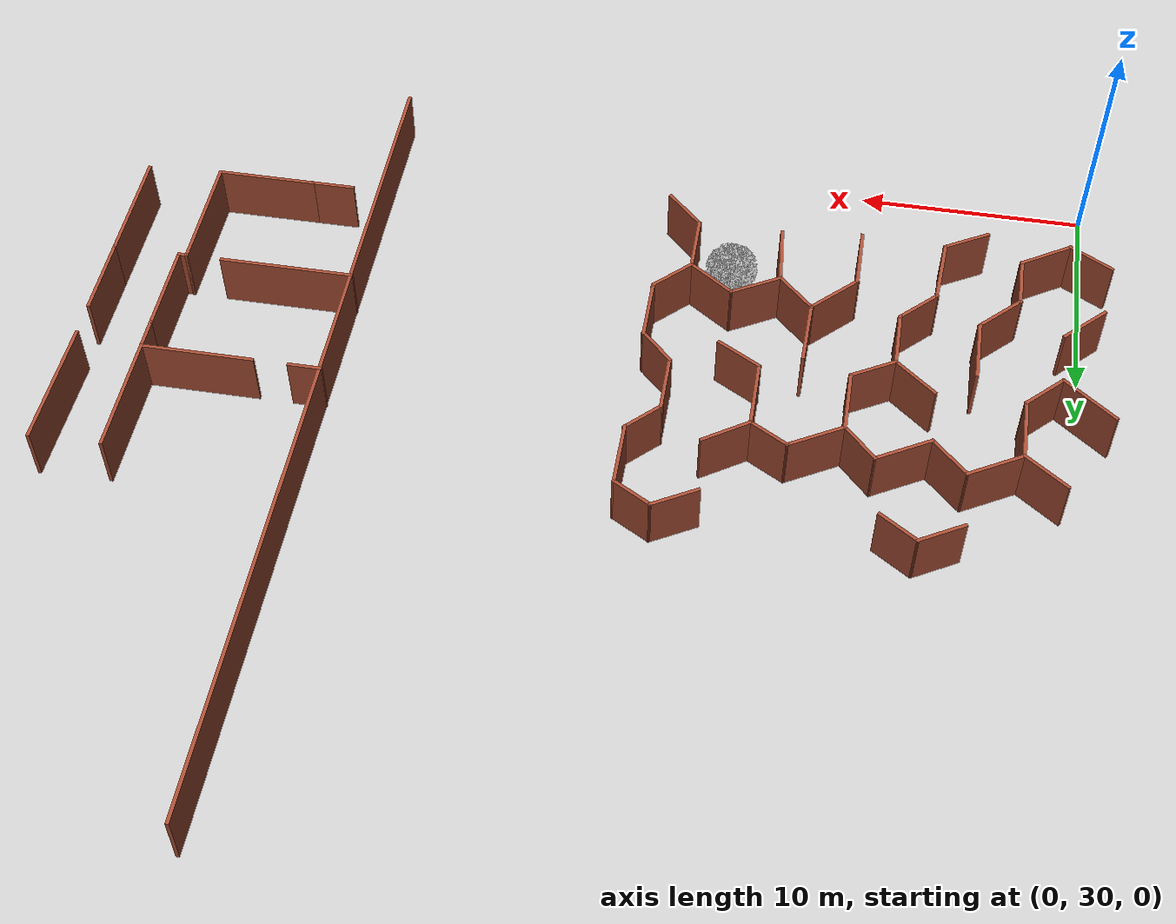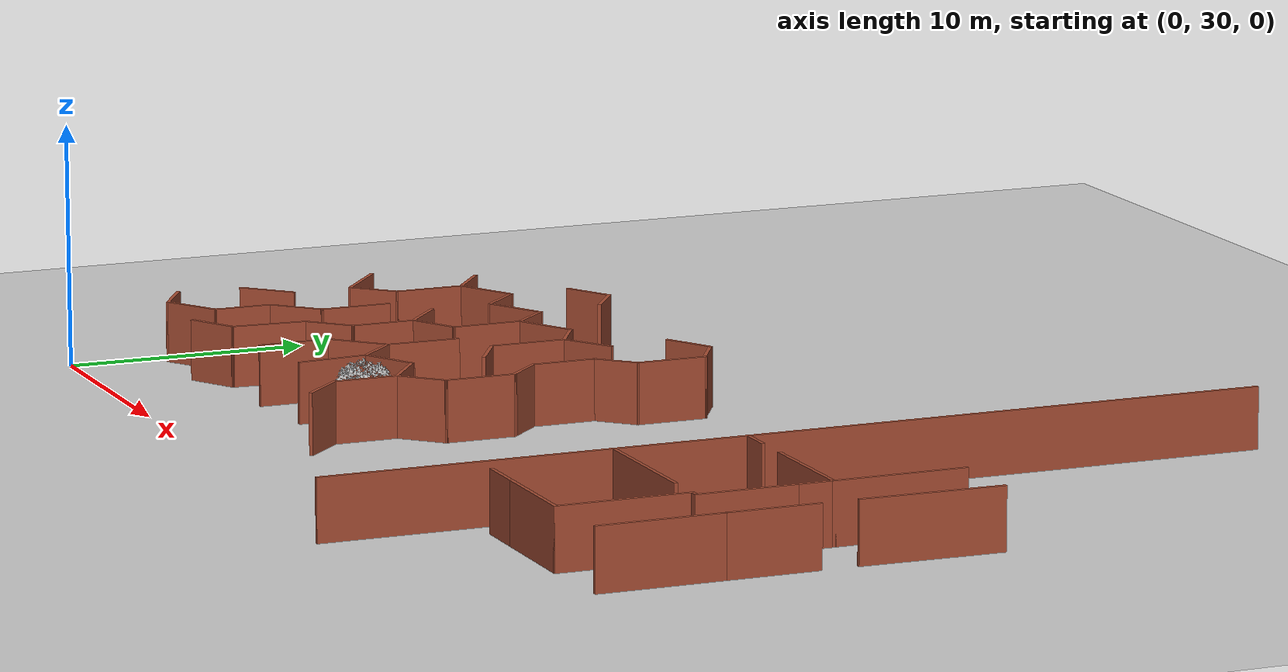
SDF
<sdf version="1.6">
 <world name="default">
  <model name="maze_rect_3">
   <pose>4e-06 -9.9e-05 0 0 -0 1.57001</pose>
   <link name="Wall_134">
    <collision name="Wall_134_Collision">
     <geometry><box><size>2.25 0.15 2.5</size></box></geometry>
     <pose>0 0 1.25 0 -0 0</pose>
    </collision>
    <visual name="Wall_134_Visual">
     <pose>0 0 1.25 0 -0 0</pose>
     <geometry><box><size>2.25 0.15 2.5</size></box></geometry>
     <material>
      <script><uri>file://media/materials/scripts/gazebo.material</uri><name>Gazebo/Bricks</name></script>
      <ambient>1 1 1 1</ambient>
     </material>
     <meta><layer>0</layer></meta>
    </visual>
    <pose>50.6067 -5.48083 0 0 -0 -1.0472</pose>
   </link>
   <link name="Wall_135">
    <collision name="Wall_135_Collision">
     <geometry><box><size>2.03846 0.15 2.5</size></box></geometry>
     <pose>0 0 1.25 0 -0 0</pose>
    </collision>
    <visual name="Wall_135_Visual">
     <pose>0 0 1.25 0 -0 0</pose>
     <geometry><box><size>2.03846 0.15 2.5</size></box></geometry>
     <material>
      <script><uri>file://media/materials/scripts/gazebo.material</uri><name>Gazebo/Bricks</name></script>
      <ambient>1 1 1 1</ambient>
     </material>
     <meta><layer>0</layer></meta>
    </visual>
    <pose>50.6067 -7.17498 0 0 -0 -2.16037</pose>
   </link>
   <link name="Wall_142">
    <collision name="Wall_142_Collision">
     <geometry><box><size>2.25 0.15 2.5</size></box></geometry>
     <pose>0 0 1.25 0 -0 0</pose>
    </collision>
    <visual name="Wall_142_Visual">
     <pose>0 0 1.25 0 -0 0</pose>
     <geometry><box><size>2.25 0.15 2.5</size></box></geometry>
     <material>
      <script><uri>file://media/materials/scripts/gazebo.material</uri><name>Gazebo/Bricks</name></script>
      <ambient>1 1 1 1</ambient>
     </material>
     <meta><layer>0</layer></meta>
    </visual>
    <pose>50.5837 -16.0931 0 0 -0 -1.0472</pose>
   </link>
   <link name="Wall_143">
    <collision name="Wall_143_Collision">
     <geometry><box><size>2 0.15 2.5</size></box></geometry>
     <pose>0 0 1.25 0 -0 0</pose>
    </collision>
    <visual name="Wall_143_Visual">
     <pose>0 0 1.25 0 -0 0</pose>
     <geometry><box><size>2 0.15 2.5</size></box></geometry>
     <material>
      <script><uri>file://media/materials/scripts/gazebo.material</uri><name>Gazebo/Bricks</name></script>
      <ambient>1 1 1 1</ambient>
     </material>
     <meta><layer>0</layer></meta>
    </visual>
    <pose>50.6462 -17.8035 0 0 -0 -2.0944</pose>
   </link>
   <link name="Wall_144">
    <collision name="Wall_144_Collision">
     <geometry><box><size>3 0.15 2.5</size></box></geometry>
     <pose>0 0 1.25 0 -0 0</pose>
    </collision>
    <visual name="Wall_144_Visual">
     <pose>0 0 1.25 0 -0 0</pose>
     <geometry><box><size>3 0.15 2.5</size></box></geometry>
     <material>
      <script><uri>file://media/materials/scripts/gazebo.material</uri><name>Gazebo/Bricks</name></script>
      <ambient>1 1 1 1</ambient>
     </material>
     <meta><layer>0</layer></meta>
    </visual>
    <pose>48.7587 -18.6045 0 0 -0 3.14159</pose>
   </link>
   <link name="Wall_145">
    <collision name="Wall_145_Collision">
     <geometry><box><size>2 0.15 2.5</size></box></geometry>
     <pose>0 0 1.25 0 -0 0</pose>
    </collision>
    <visual name="Wall_145_Visual">
     <pose>0 0 1.25 0 -0 0</pose>
     <geometry><box><size>2 0.15 2.5</size></box></geometry>
     <material>
      <script><uri>file://media/materials/scripts/gazebo.material</uri><name>Gazebo/Bricks</name></script>
      <ambient>1 1 1 1</ambient>
     </material>
     <meta><layer>0</layer></meta>
    </visual>
    <pose>46.6796 -17.9505 0 0 -0 2.35619</pose>
   </link>
   <link name="Wall_146">
    <collision name="Wall_146_Collision">
     <geometry><box><size>2.75 0.15 2.5</size></box></geometry>
     <pose>0 0 1.25 0 -0 0</pose>
    </collision>
    <visual name="Wall_146_Visual">
     <pose>0 0 1.25 0 -0 0</pose>
     <geometry><box><size>2.75 0.15 2.5</size></box></geometry>
     <material>
      <script><uri>file://media/materials/scripts/gazebo.material</uri><name>Gazebo/Bricks</name></script>
      <ambient>1 1 1 1</ambient>
     </material>
     <meta><layer>0</layer></meta>
    </visual>
    <pose>44.7255 -17.2964 0 0 -0 3.14159</pose>
   </link>
   <link name="Wall_147">
    <collision name="Wall_147_Collision">
     <geometry><box><size>2 0.15 2.5</size></box></geometry>
     <pose>0 0 1.25 0 -0 0</pose>
    </collision>
    <visual name="Wall_147_Visual">
     <pose>0 0 1.25 0 -0 0</pose>
     <geometry><box><size>2 0.15 2.5</size></box></geometry>
     <material>
      <script><uri>file://media/materials/scripts/gazebo.material</uri><name>Gazebo/Bricks</name></script>
      <ambient>1 1 1 1</ambient>
     </material>
     <meta><layer>0</layer></meta>
    </visual>
    <pose>42.7714 -17.9505 0 0 -0 -2.35619</pose>
   </link>
   <link name="Wall_148">
    <collision name="Wall_148_Collision">
     <geometry><box><size>3 0.15 2.5</size></box></geometry>
     <pose>0 0 1.25 0 -0 0</pose>
    </collision>
    <visual name="Wall_148_Visual">
     <pose>0 0 1.25 0 -0 0</pose>
     <geometry><box><size>3 0.15 2.5</size></box></geometry>
     <material>
      <script><uri>file://media/materials/scripts/gazebo.material</uri><name>Gazebo/Bricks</name></script>
      <ambient>1 1 1 1</ambient>
     </material>
     <meta><layer>0</layer></meta>
    </visual>
    <pose>40.6924 -18.6045 0 0 -0 3.14159</pose>
   </link>
   <link name="Wall_149">
    <collision name="Wall_149_Collision">
     <geometry><box><size>2.25 0.15 2.5</size></box></geometry>
     <pose>0 0 1.25 0 -0 0</pose>
    </collision>
    <visual name="Wall_149_Visual">
     <pose>0 0 1.25 0 -0 0</pose>
     <geometry><box><size>2.25 0.15 2.5</size></box></geometry>
     <material>
      <script><uri>file://media/materials/scripts/gazebo.material</uri><name>Gazebo/Bricks</name></script>
      <ambient>1 1 1 1</ambient>
     </material>
     <meta><layer>0</layer></meta>
    </visual>
    <pose>38.5249 -17.8621 0 0 -0 2.35619</pose>
   </link>
   <link name="Wall_150">
    <collision name="Wall_150_Collision">
     <geometry><box><size>2.75 0.15 2.5</size></box></geometry>
     <pose>0 0 1.25 0 -0 0</pose>
    </collision>
    <visual name="Wall_150_Visual">
     <pose>0 0 1.25 0 -0 0</pose>
     <geometry><box><size>2.75 0.15 2.5</size></box></geometry>
     <material>
      <script><uri>file://media/materials/scripts/gazebo.material</uri><name>Gazebo/Bricks</name></script>
      <ambient>1 1 1 1</ambient>
     </material>
     <meta><layer>0</layer></meta>
    </visual>
    <pose>36.4824 -17.1196 0 0 -0 3.14159</pose>
   </link>
   <link name="Wall_151">
    <collision name="Wall_151_Collision">
     <geometry><box><size>2.25 0.15 2.5</size></box></geometry>
     <pose>0 0 1.25 0 -0 0</pose>
    </collision>
    <visual name="Wall_151_Visual">
     <pose>0 0 1.25 0 -0 0</pose>
     <geometry><box><size>2.25 0.15 2.5</size></box></geometry>
     <material>
      <script><uri>file://media/materials/scripts/gazebo.material</uri><name>Gazebo/Bricks</name></script>
      <ambient>1 1 1 1</ambient>
     </material>
     <meta><layer>0</layer></meta>
    </visual>
    <pose>34.44 -17.8621 0 0 -0 -2.35619</pose>
   </link>
   <link name="Wall_215">
    <collision name="Wall_215_Collision">
     <geometry><box><size>3 0.15 2.5</size></box></geometry>
     <pose>0 0 1.25 0 -0 0</pose>
    </collision>
    <visual name="Wall_215_Visual">
     <pose>0 0 1.25 0 -0 0</pose>
     <geometry><box><size>3 0.15 2.5</size></box></geometry>
     <material>
      <script><uri>file://media/materials/scripts/gazebo.material</uri><name>Gazebo/Bricks</name></script>
      <ambient>1 1 1 1</ambient>
     </material>
     <meta><layer>0</layer></meta>
    </visual>
    <pose>36.1781 -9.85453 0 0 -0 0</pose>
   </link>
   <link name="Wall_216">
    <collision name="Wall_216_Collision">
     <geometry><box><size>2.75 0.15 2.5</size></box></geometry>
     <pose>0 0 1.25 0 -0 0</pose>
    </collision>
    <visual name="Wall_216_Visual">
     <pose>0 0 1.25 0 -0 0</pose>
     <geometry><box><size>2.75 0.15 2.5</size></box></geometry>
     <material>
      <script><uri>file://media/materials/scripts/gazebo.material</uri><name>Gazebo/Bricks</name></script>
      <ambient>1 1 1 1</ambient>
     </material>
     <meta><layer>0</layer></meta>
    </visual>
    <pose>38.5224 -10.7738 0 0 -0 -0.785398</pose>
   </link>
   <link name="Wall_217">
    <collision name="Wall_217_Collision">
     <geometry><box><size>2.25 0.15 2.5</size></box></geometry>
     <pose>0 0 1.25 0 -0 0</pose>
    </collision>
    <visual name="Wall_217_Visual">
     <pose>0 0 1.25 0 -0 0</pose>
     <geometry><box><size>2.25 0.15 2.5</size></box></geometry>
     <material>
      <script><uri>file://media/materials/scripts/gazebo.material</uri><name>Gazebo/Bricks</name></script>
      <ambient>1 1 1 1</ambient>
     </material>
     <meta><layer>0</layer></meta>
    </visual>
    <pose>38.6992 -12.4355 0 0 -0 -2.35619</pose>
   </link>
   <link name="Wall_218">
    <collision name="Wall_218_Collision">
     <geometry><box><size>2.5 0.15 2.5</size></box></geometry>
     <pose>0 0 1.25 0 -0 0</pose>
    </collision>
    <visual name="Wall_218_Visual">
     <pose>0 0 1.25 0 -0 0</pose>
     <geometry><box><size>2.5 0.15 2.5</size></box></geometry>
     <material>
      <script><uri>file://media/materials/scripts/gazebo.material</uri><name>Gazebo/Bricks</name></script>
      <ambient>1 1 1 1</ambient>
     </material>
     <meta><layer>0</layer></meta>
    </visual>
    <pose>38.5442 -14.1955 0 0 -0 -1.0472</pose>
   </link>
   <link name="Wall_220">
    <collision name="Wall_220_Collision">
     <geometry><box><size>2.48566 0.15 2.5</size></box></geometry>
     <pose>0 0 1.25 0 -0 0</pose>
    </collision>
    <visual name="Wall_220_Visual">
     <pose>0 0 1.25 0 -0 0</pose>
     <geometry><box><size>2.48566 0.15 2.5</size></box></geometry>
     <material>
      <script><uri>file://media/materials/scripts/gazebo.material</uri><name>Gazebo/Bricks</name></script>
      <ambient>1 1 1 1</ambient>
     </material>
     <meta><layer>0</layer></meta>
    </visual>
    <pose>38.4571 -16.1663 0 0 -0 0.954913</pose>
   </link>
   <link name="Wall_222">
    <collision name="Wall_222_Collision">
     <geometry><box><size>2.99185 0.15 2.5</size></box></geometry>
     <pose>0 0 1.25 0 -0 0</pose>
    </collision>
    <visual name="Wall_222_Visual">
     <pose>0 0 1.25 0 -0 0</pose>
     <geometry><box><size>2.99185 0.15 2.5</size></box></geometry>
     <material>
      <script><uri>file://media/materials/scripts/gazebo.material</uri><name>Gazebo/Bricks</name></script>
      <ambient>1 1 1 1</ambient>
     </material>
     <meta><layer>0</layer></meta>
    </visual>
    <pose>36.5401 -13.2884 0 0 -0 0.077809</pose>
   </link>
   <link name="Wall_224">
    <collision name="Wall_224_Collision">
     <geometry><box><size>3.07986 0.15 2.5</size></box></geometry>
     <pose>0 0 1.25 0 -0 0</pose>
    </collision>
    <visual name="Wall_224_Visual">
     <pose>0 0 1.25 0 -0 0</pose>
     <geometry><box><size>3.07986 0.15 2.5</size></box></geometry>
     <material>
      <script><uri>file://media/materials/scripts/gazebo.material</uri><name>Gazebo/Bricks</name></script>
      <ambient>1 1 1 1</ambient>
     </material>
     <meta><layer>0</layer></meta>
    </visual>
    <pose>40.9062 -11.726 0 0 -0 3.11909</pose>
   </link>
   <link name="Wall_234">
    <collision name="Wall_234_Collision">
     <geometry><box><size>2.25 0.15 2.5</size></box></geometry>
     <pose>0 0 1.25 0 -0 0</pose>
    </collision>
    <visual name="Wall_234_Visual">
     <pose>0 0 1.25 0 -0 0</pose>
     <geometry><box><size>2.25 0.15 2.5</size></box></geometry>
     <material>
      <script><uri>file://media/materials/scripts/gazebo.material</uri><name>Gazebo/Bricks</name></script>
      <ambient>1 1 1 1</ambient>
     </material>
     <meta><layer>0</layer></meta>
    </visual>
    <pose>34.3259 -5.26225 0 0 -0 -1.0472</pose>
   </link>
   <link name="Wall_238">
    <collision name="Wall_238_Collision">
     <geometry><box><size>2.25 0.15 2.5</size></box></geometry>
     <pose>0 0 1.25 0 -0 0</pose>
    </collision>
    <visual name="Wall_238_Visual">
     <pose>0 0 1.25 0 -0 0</pose>
     <geometry><box><size>2.25 0.15 2.5</size></box></geometry>
     <material>
      <script><uri>file://media/materials/scripts/gazebo.material</uri><name>Gazebo/Bricks</name></script>
      <ambient>1 1 1 1</ambient>
     </material>
     <meta><layer>0</layer></meta>
    </visual>
    <pose>42.6312 -14.4468 0 0 -0 1.0472</pose>
   </link>
   <link name="Wall_239">
    <collision name="Wall_239_Collision">
     <geometry><box><size>3.25 0.15 2.5</size></box></geometry>
     <pose>0 0 1.25 0 -0 0</pose>
    </collision>
    <visual name="Wall_239_Visual">
     <pose>0 0 1.25 0 -0 0</pose>
     <geometry><box><size>3.25 0.15 2.5</size></box></geometry>
     <material>
      <script><uri>file://media/materials/scripts/gazebo.material</uri><name>Gazebo/Bricks</name></script>
      <ambient>1 1 1 1</ambient>
     </material>
     <meta><layer>0</layer></meta>
    </visual>
    <pose>44.7062 -13.5375 0 0 -0 0</pose>
   </link>
   <link name="Wall_240">
    <collision name="Wall_240_Collision">
     <geometry><box><size>2 0.15 2.5</size></box></geometry>
     <pose>0 0 1.25 0 -0 0</pose>
    </collision>
    <visual name="Wall_240_Visual">
     <pose>0 0 1.25 0 -0 0</pose>
     <geometry><box><size>2 0.15 2.5</size></box></geometry>
     <material>
      <script><uri>file://media/materials/scripts/gazebo.material</uri><name>Gazebo/Bricks</name></script>
      <ambient>1 1 1 1</ambient>
     </material>
     <meta><layer>0</layer></meta>
    </visual>
    <pose>46.7187 -12.7364 0 0 -0 1.0472</pose>
   </link>
   <link name="Wall_241">
    <collision name="Wall_241_Collision">
     <geometry><box><size>2.75 0.15 2.5</size></box></geometry>
     <pose>0 0 1.25 0 -0 0</pose>
    </collision>
    <visual name="Wall_241_Visual">
     <pose>0 0 1.25 0 -0 0</pose>
     <geometry><box><size>2.75 0.15 2.5</size></box></geometry>
     <material>
      <script><uri>file://media/materials/scripts/gazebo.material</uri><name>Gazebo/Bricks</name></script>
      <ambient>1 1 1 1</ambient>
     </material>
     <meta><layer>0</layer></meta>
    </visual>
    <pose>46.5312 -10.8095 0 0 -0 2.0944</pose>
   </link>
   <link name="Wall_242">
    <collision name="Wall_242_Collision">
     <geometry><box><size>3 0.15 2.5</size></box></geometry>
     <pose>0 0 1.25 0 -0 0</pose>
    </collision>
    <visual name="Wall_242_Visual">
     <pose>0 0 1.25 0 -0 0</pose>
     <geometry><box><size>3 0.15 2.5</size></box></geometry>
     <material>
      <script><uri>file://media/materials/scripts/gazebo.material</uri><name>Gazebo/Bricks</name></script>
      <ambient>1 1 1 1</ambient>
     </material>
     <meta><layer>0</layer></meta>
    </visual>
    <pose>44.4562 -9.68366 0 0 -0 3.14159</pose>
   </link>
   <link name="Wall_243">
    <collision name="Wall_243_Collision">
     <geometry><box><size>2.25 0.15 2.5</size></box></geometry>
     <pose>0 0 1.25 0 -0 0</pose>
    </collision>
    <visual name="Wall_243_Visual">
     <pose>0 0 1.25 0 -0 0</pose>
     <geometry><box><size>2.25 0.15 2.5</size></box></geometry>
     <material>
      <script><uri>file://media/materials/scripts/gazebo.material</uri><name>Gazebo/Bricks</name></script>
      <ambient>1 1 1 1</ambient>
     </material>
     <meta><layer>0</layer></meta>
    </visual>
    <pose>42.5062 -8.77434 0 0 -0 2.0944</pose>
   </link>
   <link name="Wall_244">
    <collision name="Wall_244_Collision">
     <geometry><box><size>2.75 0.15 2.5</size></box></geometry>
     <pose>0 0 1.25 0 -0 0</pose>
    </collision>
    <visual name="Wall_244_Visual">
     <pose>0 0 1.25 0 -0 0</pose>
     <geometry><box><size>2.75 0.15 2.5</size></box></geometry>
     <material>
      <script><uri>file://media/materials/scripts/gazebo.material</uri><name>Gazebo/Bricks</name></script>
      <ambient>1 1 1 1</ambient>
     </material>
     <meta><layer>0</layer></meta>
    </visual>
    <pose>40.6812 -7.86501 0 0 -0 3.14159</pose>
   </link>
   <link name="Wall_245">
    <collision name="Wall_245_Collision">
     <geometry><box><size>2.25 0.15 2.5</size></box></geometry>
     <pose>0 0 1.25 0 -0 0</pose>
    </collision>
    <visual name="Wall_245_Visual">
     <pose>0 0 1.25 0 -0 0</pose>
     <geometry><box><size>2.25 0.15 2.5</size></box></geometry>
     <material>
      <script><uri>file://media/materials/scripts/gazebo.material</uri><name>Gazebo/Bricks</name></script>
      <ambient>1 1 1 1</ambient>
     </material>
     <meta><layer>0</layer></meta>
    </visual>
    <pose>38.6388 -7.12255 0 0 -0 2.35619</pose>
   </link>
   <link name="Wall_246">
    <collision name="Wall_246_Collision">
     <geometry><box><size>3.2025 0.15 2.5</size></box></geometry>
     <pose>0 0 1.25 0 -0 0</pose>
    </collision>
    <visual name="Wall_246_Visual">
     <pose>0 0 1.25 0 -0 0</pose>
     <geometry><box><size>3.2025 0.15 2.5</size></box></geometry>
     <material>
      <script><uri>file://media/materials/scripts/gazebo.material</uri><name>Gazebo/Bricks</name></script>
      <ambient>1 1 1 1</ambient>
     </material>
     <meta><layer>0</layer></meta>
    </visual>
    <pose>36.3736 -6.27583 0 0 -0 3.07323</pose>
   </link>
   <link name="Wall_248">
    <collision name="Wall_248_Collision">
     <geometry><box><size>2.39827 0.15 2.5</size></box></geometry>
     <pose>0 0 1.25 0 -0 0</pose>
    </collision>
    <visual name="Wall_248_Visual">
     <pose>0 0 1.25 0 -0 0</pose>
     <geometry><box><size>2.39827 0.15 2.5</size></box></geometry>
     <material>
      <script><uri>file://media/materials/scripts/gazebo.material</uri><name>Gazebo/Bricks</name></script>
      <ambient>1 1 1 1</ambient>
     </material>
     <meta><layer>0</layer></meta>
    </visual>
    <pose>46.8791 -14.4733 0 0 -0 2.15809</pose>
   </link>
   <link name="Wall_250">
    <collision name="Wall_250_Collision">
     <geometry><box><size>2.94552 0.15 2.5</size></box></geometry>
     <pose>0 0 1.25 0 -0 0</pose>
    </collision>
    <visual name="Wall_250_Visual">
     <pose>0 0 1.25 0 -0 0</pose>
     <geometry><box><size>2.94552 0.15 2.5</size></box></geometry>
     <material>
      <script><uri>file://media/materials/scripts/gazebo.material</uri><name>Gazebo/Bricks</name></script>
      <ambient>1 1 1 1</ambient>
     </material>
     <meta><layer>0</layer></meta>
    </visual>
    <pose>42.72 0.211357 0 0 -0 -2.24031</pose>
   </link>
   <link name="Wall_251">
    <collision name="Wall_251_Collision">
     <geometry><box><size>2.25 0.15 2.5</size></box></geometry>
     <pose>0 0 1.25 0 -0 0</pose>
    </collision>
    <visual name="Wall_251_Visual">
     <pose>0 0 1.25 0 -0 0</pose>
     <geometry><box><size>2.25 0.15 2.5</size></box></geometry>
     <material>
      <script><uri>file://media/materials/scripts/gazebo.material</uri><name>Gazebo/Bricks</name></script>
      <ambient>1 1 1 1</ambient>
     </material>
     <meta><layer>0</layer></meta>
    </visual>
    <pose>42.595 -1.62712 0 0 -0 -0.785398</pose>
   </link>
   <link name="Wall_252">
    <collision name="Wall_252_Collision">
     <geometry><box><size>3 0.15 2.5</size></box></geometry>
     <pose>0 0 1.25 0 -0 0</pose>
    </collision>
    <visual name="Wall_252_Visual">
     <pose>0 0 1.25 0 -0 0</pose>
     <geometry><box><size>3 0.15 2.5</size></box></geometry>
     <material>
      <script><uri>file://media/materials/scripts/gazebo.material</uri><name>Gazebo/Bricks</name></script>
      <ambient>1 1 1 1</ambient>
     </material>
     <meta><layer>0</layer></meta>
    </visual>
    <pose>44.7624 -2.36958 0 0 -0 0</pose>
   </link>
   <link name="Wall_253">
    <collision name="Wall_253_Collision">
     <geometry><box><size>2.75 0.15 2.5</size></box></geometry>
     <pose>0 0 1.25 0 -0 0</pose>
    </collision>
    <visual name="Wall_253_Visual">
     <pose>0 0 1.25 0 -0 0</pose>
     <geometry><box><size>2.75 0.15 2.5</size></box></geometry>
     <material>
      <script><uri>file://media/materials/scripts/gazebo.material</uri><name>Gazebo/Bricks</name></script>
      <ambient>1 1 1 1</ambient>
     </material>
     <meta><layer>0</layer></meta>
    </visual>
    <pose>46.8374 -3.49542 0 0 -0 -1.0472</pose>
   </link>
   <link name="Wall_254">
    <collision name="Wall_254_Collision">
     <geometry><box><size>2.25 0.15 2.5</size></box></geometry>
     <pose>0 0 1.25 0 -0 0</pose>
    </collision>
    <visual name="Wall_254_Visual">
     <pose>0 0 1.25 0 -0 0</pose>
     <geometry><box><size>2.25 0.15 2.5</size></box></geometry>
     <material>
      <script><uri>file://media/materials/scripts/gazebo.material</uri><name>Gazebo/Bricks</name></script>
      <ambient>1 1 1 1</ambient>
     </material>
     <meta><layer>0</layer></meta>
    </visual>
    <pose>46.745 -5.36371 0 0 -0 -2.35619</pose>
   </link>
   <link name="Wall_255">
    <collision name="Wall_255_Collision">
     <geometry><box><size>2.75 0.15 2.5</size></box></geometry>
     <pose>0 0 1.25 0 -0 0</pose>
    </collision>
    <visual name="Wall_255_Visual">
     <pose>0 0 1.25 0 -0 0</pose>
     <geometry><box><size>2.75 0.15 2.5</size></box></geometry>
     <material>
      <script><uri>file://media/materials/scripts/gazebo.material</uri><name>Gazebo/Bricks</name></script>
      <ambient>1 1 1 1</ambient>
     </material>
     <meta><layer>0</layer></meta>
    </visual>
    <pose>46.6525 -7.23201 0 0 -0 -1.0472</pose>
   </link>
   <link name="Wall_256">
    <collision name="Wall_256_Collision">
     <geometry><box><size>2.09366 0.15 2.5</size></box></geometry>
     <pose>0 0 1.25 0 -0 0</pose>
    </collision>
    <visual name="Wall_256_Visual">
     <pose>0 0 1.25 0 -0 0</pose>
     <geometry><box><size>2.09366 0.15 2.5</size></box></geometry>
     <material>
      <script><uri>file://media/materials/scripts/gazebo.material</uri><name>Gazebo/Bricks</name></script>
      <ambient>1 1 1 1</ambient>
     </material>
     <meta><layer>0</layer></meta>
    </visual>
    <pose>46.5919 -9.02075 0 0 -0 -2.39093</pose>
   </link>
   <link name="Wall_269">
    <collision name="Wall_269_Collision">
     <geometry><box><size>2.25 0.15 2.5</size></box></geometry>
     <pose>0 0 1.25 0 -0 0</pose>
    </collision>
    <visual name="Wall_269_Visual">
     <pose>0 0 1.25 0 -0 0</pose>
     <geometry><box><size>2.25 0.15 2.5</size></box></geometry>
     <material>
      <script><uri>file://media/materials/scripts/gazebo.material</uri><name>Gazebo/Bricks</name></script>
      <ambient>1 1 1 1</ambient>
     </material>
     <meta><layer>0</layer></meta>
    </visual>
    <pose>34.5085 0.198006 0 0 -0 -2.0944</pose>
   </link>
   <link name="Wall_283">
    <collision name="Wall_283_Collision">
     <geometry><box><size>3 0.15 2.5</size></box></geometry>
     <pose>0 0 1.25 0 -0 0</pose>
    </collision>
    <visual name="Wall_283_Visual">
     <pose>0 0 1.25 0 -0 0</pose>
     <geometry><box><size>3 0.15 2.5</size></box></geometry>
     <material>
      <script><uri>file://media/materials/scripts/gazebo.material</uri><name>Gazebo/Bricks</name></script>
      <ambient>1 1 1 1</ambient>
     </material>
     <meta><layer>0</layer></meta>
    </visual>
    <pose>40.7341 -4.45873 0 0 -0 3.14159</pose>
   </link>
   <link name="Wall_284">
    <collision name="Wall_284_Collision">
     <geometry><box><size>2.5 0.15 2.5</size></box></geometry>
     <pose>0 0 1.25 0 -0 0</pose>
    </collision>
    <visual name="Wall_284_Visual">
     <pose>0 0 1.25 0 -0 0</pose>
     <geometry><box><size>2.5 0.15 2.5</size></box></geometry>
     <material>
      <script><uri>file://media/materials/scripts/gazebo.material</uri><name>Gazebo/Bricks</name></script>
      <ambient>1 1 1 1</ambient>
     </material>
     <meta><layer>0</layer></meta>
    </visual>
    <pose>38.4783 -3.62788 0 0 -0 2.35619</pose>
   </link>
   <link name="Wall_285">
    <collision name="Wall_285_Collision">
     <geometry><box><size>2.5 0.15 2.5</size></box></geometry>
     <pose>0 0 1.25 0 -0 0</pose>
    </collision>
    <visual name="Wall_285_Visual">
     <pose>0 0 1.25 0 -0 0</pose>
     <geometry><box><size>2.5 0.15 2.5</size></box></geometry>
     <material>
      <script><uri>file://media/materials/scripts/gazebo.material</uri><name>Gazebo/Bricks</name></script>
      <ambient>1 1 1 1</ambient>
     </material>
     <meta><layer>0</layer></meta>
    </visual>
    <pose>36.4724 -2.79703 0 0 -0 3.14159</pose>
   </link>
   <link name="Wall_286">
    <collision name="Wall_286_Collision">
     <geometry><box><size>2.61508 0.15 2.5</size></box></geometry>
     <pose>0 0 1.25 0 -0 0</pose>
    </collision>
    <visual name="Wall_286_Visual">
     <pose>0 0 1.25 0 -0 0</pose>
     <geometry><box><size>2.61508 0.15 2.5</size></box></geometry>
     <material>
      <script><uri>file://media/materials/scripts/gazebo.material</uri><name>Gazebo/Bricks</name></script>
      <ambient>1 1 1 1</ambient>
     </material>
     <meta><layer>0</layer></meta>
    </visual>
    <pose>34.6405 -1.75417 0 0 -0 2.13297</pose>
   </link>
   <link name="Wall_288">
    <collision name="Wall_288_Collision">
     <geometry><box><size>2.5 0.15 2.5</size></box></geometry>
     <pose>0 0 1.25 0 -0 0</pose>
    </collision>
    <visual name="Wall_288_Visual">
     <pose>0 0 1.25 0 -0 0</pose>
     <geometry><box><size>2.5 0.15 2.5</size></box></geometry>
     <material>
      <script><uri>file://media/materials/scripts/gazebo.material</uri><name>Gazebo/Bricks</name></script>
      <ambient>1 1 1 1</ambient>
     </material>
     <meta><layer>0</layer></meta>
    </visual>
    <pose>38.5246 -0.030677 0 0 -0 2.35619</pose>
   </link>
   <link name="Wall_295">
    <collision name="Wall_295_Collision">
     <geometry><box><size>2.35684 0.15 2.5</size></box></geometry>
     <pose>0 0 1.25 0 -0 0</pose>
    </collision>
    <visual name="Wall_295_Visual">
     <pose>0 0 1.25 0 -0 0</pose>
     <geometry><box><size>2.35684 0.15 2.5</size></box></geometry>
     <material>
      <script><uri>file://media/materials/scripts/gazebo.material</uri><name>Gazebo/Bricks</name></script>
      <ambient>1 1 1 1</ambient>
     </material>
     <meta><layer>0</layer></meta>
    </visual>
    <pose>46.8447 -1.48331 0 0 -0 -2.20893</pose>
   </link>
   <link name="Wall_297">
    <collision name="Wall_297_Collision">
     <geometry><box><size>2.39305 0.15 2.5</size></box></geometry>
     <pose>0 0 1.25 0 -0 0</pose>
    </collision>
    <visual name="Wall_297_Visual">
     <pose>0 0 1.25 0 -0 0</pose>
     <geometry><box><size>2.39305 0.15 2.5</size></box></geometry>
     <material>
      <script><uri>file://media/materials/scripts/gazebo.material</uri><name>Gazebo/Bricks</name></script>
      <ambient>1 1 1 1</ambient>
     </material>
     <meta><layer>0</layer></meta>
    </visual>
    <pose>42.705 -7.00827 0 0 -0 -2.27225</pose>
   </link>
   <static>1</static>
  </model>
  <model name="tree2_5">
   <link name="link_0">
    <inertial>
     <mass>1</mass>
     <inertia>
      <ixx>0.166667</ixx>
      <ixy>0</ixy>
      <ixz>0</ixz>
      <iyy>0.166667</iyy>
      <iyz>0</iyz>
      <izz>0.166667</izz>
     </inertia>
    </inertial>
    <pose>-0 -0 0 1.58863 -0.000294 0</pose>
    <visual name="visual">
     <geometry><mesh><uri>model://tree2/Tree.obj</uri><scale>1 1 1</scale></mesh></geometry>
    </visual>
    <collision name="collision">
     <geometry><mesh><uri>model://tree2/Tree.obj</uri><scale>1 1 1</scale></mesh></geometry>
     <surface>
      <friction>
       <ode><mu>1</mu><mu2>1</mu2><fdir1>0 0 0</fdir1><slip1>0</slip1><slip2>0</slip2></ode>
       <torsional>
        <coefficient>1</coefficient>
        <patch_radius>0</patch_radius>
        <surface_radius>0</surface_radius>
        <use_patch_radius>1</use_patch_radius>
        <ode><slip>0</slip></ode>
       </torsional>
      </friction>
      <bounce><restitution_coefficient>0</restitution_coefficient><threshold>1e+06</threshold></bounce>
      <contact>
       <collide_without_contact>0</collide_without_contact>
       <collide_without_contact_bitmask>1</collide_without_contact_bitmask>
       <collide_bitmask>1</collide_bitmask>
       <ode>
        <soft_cfm>0</soft_cfm>
        <soft_erp>0.2</soft_erp>
        <kp>1e+13</kp>
        <kd>1</kd>
        <max_vel>0.01</max_vel>
        <min_depth>0</min_depth>
       </ode>
       <bullet>
        <split_impulse>1</split_impulse>
        <split_impulse_penetration_threshold>-0.01</split_impulse_penetration_threshold>
        <soft_cfm>0</soft_cfm>
        <soft_erp>0.2</soft_erp>
        <kp>1e+13</kp>
        <kd>1</kd>
       </bullet>
      </contact>
     </surface>
    </collision>
   </link>
   <static>1</static>
   <pose>15.4402 37.0738 0 0 -0 0</pose>
  </model>
  <model name="map_palace_v2_model_1">
   <pose>0 60 0 0 -0 0</pose>
   <link name="Wall_275">
    <collision name="Wall_275_Collision">
     <geometry><box><size>5.25 0.15 2.5</size></box></geometry>
     <pose>0 0 1.25 0 -0 0</pose>
    </collision>
    <visual name="Wall_275_Visual">
     <pose>0 0 1.25 0 -0 0</pose>
     <geometry><box><size>5.25 0.15 2.5</size></box></geometry>
     <material>
      <script><uri>file://media/materials/scripts/gazebo.material</uri><name>Gazebo/Bricks</name></script>
      <ambient>1 1 1 1</ambient>
     </material>
     <meta><layer>0</layer></meta>
    </visual>
    <pose>42.5023 -21.6985 0 0 -0 1.5708</pose>
   </link>
   <link name="Wall_280">
    <collision name="Wall_280_Collision">
     <geometry><box><size>2 0.15 2.5</size></box></geometry>
     <pose>0 0 1.25 0 -0 0</pose>
    </collision>
    <visual name="Wall_280_Visual">
     <pose>0 0 1.25 0 -0 0</pose>
     <geometry><box><size>2 0.15 2.5</size></box></geometry>
     <material>
      <script><uri>file://media/materials/scripts/gazebo.material</uri><name>Gazebo/Bricks</name></script>
      <ambient>1 1 1 1</ambient>
     </material>
     <meta><layer>0</layer></meta>
    </visual>
    <pose>33.9319 -24.4851 0 0 -0 3.14159</pose>
   </link>
   <link name="Wall_283">
    <collision name="Wall_283_Collision">
     <geometry><box><size>4.5 0.15 2.5</size></box></geometry>
     <pose>0 0 1.25 0 -0 0</pose>
    </collision>
    <visual name="Wall_283_Visual">
     <pose>0 0 1.25 0 -0 0</pose>
     <geometry><box><size>4.5 0.15 2.5</size></box></geometry>
     <material>
      <script><uri>file://media/materials/scripts/gazebo.material</uri><name>Gazebo/Bricks</name></script>
      <ambient>1 1 1 1</ambient>
     </material>
     <meta><layer>0</layer></meta>
    </visual>
    <pose>37.0319 -24.4851 0 0 -0 0</pose>
   </link>
   <link name="Wall_284">
    <collision name="Wall_284_Collision">
     <geometry><box><size>5.5 0.15 2.5</size></box></geometry>
     <pose>0 0 1.25 0 -0 0</pose>
    </collision>
    <visual name="Wall_284_Visual">
     <pose>0 0 1.25 0 -0 0</pose>
     <geometry><box><size>5.5 0.15 2.5</size></box></geometry>
     <material>
      <script><uri>file://media/materials/scripts/gazebo.material</uri><name>Gazebo/Bricks</name></script>
      <ambient>1 1 1 1</ambient>
     </material>
     <meta><layer>0</layer></meta>
    </visual>
    <pose>39.2069 -21.8101 0 0 -0 1.5708</pose>
   </link>
   <link name="Wall_286">
    <collision name="Wall_286_Collision">
     <geometry><box><size>6 0.15 2.5</size></box></geometry>
     <pose>0 0 1.25 0 -0 0</pose>
    </collision>
    <visual name="Wall_286_Visual">
     <pose>0 0 1.25 0 -0 0</pose>
     <geometry><box><size>6 0.15 2.5</size></box></geometry>
     <material>
      <script><uri>file://media/materials/scripts/gazebo.material</uri><name>Gazebo/Bricks</name></script>
      <ambient>1 1 1 1</ambient>
     </material>
     <meta><layer>0</layer></meta>
    </visual>
    <pose>34.6819 -19.1351 0 0 -0 3.14159</pose>
   </link>
   <link name="Wall_288">
    <collision name="Wall_288_Collision">
     <geometry><box><size>0.5 0.15 2.5</size></box></geometry>
     <pose>0 0 1.25 0 -0 0</pose>
    </collision>
    <visual name="Wall_288_Visual">
     <pose>0 0 1.25 0 -0 0</pose>
     <geometry><box><size>0.5 0.15 2.5</size></box></geometry>
     <material>
      <script><uri>file://media/materials/scripts/gazebo.material</uri><name>Gazebo/Bricks</name></script>
      <ambient>1 1 1 1</ambient>
     </material>
     <meta><layer>0</layer></meta>
    </visual>
    <pose>39.3819 -19.1351 0 0 -0 0</pose>
   </link>
   <link name="Wall_289">
    <collision name="Wall_289_Collision">
     <geometry><box><size>4.25 0.15 2.5</size></box></geometry>
     <pose>0 0 1.25 0 -0 0</pose>
    </collision>
    <visual name="Wall_289_Visual">
     <pose>0 0 1.25 0 -0 0</pose>
     <geometry><box><size>4.25 0.15 2.5</size></box></geometry>
     <material>
      <script><uri>file://media/materials/scripts/gazebo.material</uri><name>Gazebo/Bricks</name></script>
      <ambient>1 1 1 1</ambient>
     </material>
     <meta><layer>0</layer></meta>
    </visual>
    <pose>39.5569 -17.085 0 0 -0 1.5708</pose>
   </link>
   <link name="Wall_290">
    <collision name="Wall_290_Collision">
     <geometry><box><size>1.5 0.15 2.5</size></box></geometry>
     <pose>0 0 1.25 0 -0 0</pose>
    </collision>
    <visual name="Wall_290_Visual">
     <pose>0 0 1.25 0 -0 0</pose>
     <geometry><box><size>1.5 0.15 2.5</size></box></geometry>
     <material>
      <script><uri>file://media/materials/scripts/gazebo.material</uri><name>Gazebo/Bricks</name></script>
      <ambient>1 1 1 1</ambient>
     </material>
     <meta><layer>0</layer></meta>
    </visual>
    <pose>39.5569 -14.36 0 0 -0 1.5708</pose>
   </link>
   <link name="Wall_291">
    <collision name="Wall_291_Collision">
     <geometry><box><size>5 0.15 2.5</size></box></geometry>
     <pose>0 0 1.25 0 -0 0</pose>
    </collision>
    <visual name="Wall_291_Visual">
     <pose>0 0 1.25 0 -0 0</pose>
     <geometry><box><size>5 0.15 2.5</size></box></geometry>
     <material>
      <script><uri>file://media/materials/scripts/gazebo.material</uri><name>Gazebo/Bricks</name></script>
      <ambient>1 1 1 1</ambient>
     </material>
     <meta><layer>0</layer></meta>
    </visual>
    <pose>37.1319 -13.6851 0 0 -0 3.14159</pose>
   </link>
   <link name="Wall_293">
    <collision name="Wall_293_Collision">
     <geometry><box><size>1.5 0.15 2.5</size></box></geometry>
     <pose>0 0 1.25 0 -0 0</pose>
    </collision>
    <visual name="Wall_293_Visual">
     <pose>0 0 1.25 0 -0 0</pose>
     <geometry><box><size>1.5 0.15 2.5</size></box></geometry>
     <material>
      <script><uri>file://media/materials/scripts/gazebo.material</uri><name>Gazebo/Bricks</name></script>
      <ambient>1 1 1 1</ambient>
     </material>
     <meta><layer>0</layer></meta>
    </visual>
    <pose>32.4319 -13.6851 0 0 -0 3.14159</pose>
   </link>
   <link name="Wall_295">
    <collision name="Wall_295_Collision">
     <geometry><box><size>5.5 0.15 2.5</size></box></geometry>
     <pose>0 0 1.25 0 -0 0</pose>
    </collision>
    <visual name="Wall_295_Visual">
     <pose>0 0 1.25 0 -0 0</pose>
     <geometry><box><size>5.5 0.15 2.5</size></box></geometry>
     <material>
      <script><uri>file://media/materials/scripts/gazebo.material</uri><name>Gazebo/Bricks</name></script>
      <ambient>1 1 1 1</ambient>
     </material>
     <meta><layer>0</layer></meta>
    </visual>
    <pose>39.5569 -11.01 0 0 -0 1.5708</pose>
   </link>
   <link name="Wall_302">
    <collision name="Wall_302_Collision">
     <geometry><box><size>3.75 0.15 2.5</size></box></geometry>
     <pose>0 0 1.25 0 -0 0</pose>
    </collision>
    <visual name="Wall_302_Visual">
     <pose>0 0 1.25 0 -0 0</pose>
     <geometry><box><size>3.75 0.15 2.5</size></box></geometry>
     <material>
      <script><uri>file://media/materials/scripts/gazebo.material</uri><name>Gazebo/Bricks</name></script>
      <ambient>1 1 1 1</ambient>
     </material>
     <meta><layer>0</layer></meta>
    </visual>
    <pose>42.5023 -17.3485 0 0 -0 1.5708</pose>
   </link>
   <link name="Wall_304">
    <collision name="Wall_304_Collision">
     <geometry><box><size>5.8416 0.15 2.5</size></box></geometry>
     <pose>0 0 1.25 0 -0 0</pose>
    </collision>
    <visual name="Wall_304_Visual">
     <pose>0 0 1.25 0 -0 0</pose>
     <geometry><box><size>5.8416 0.15 2.5</size></box></geometry>
     <material>
      <script><uri>file://media/materials/scripts/gazebo.material</uri><name>Gazebo/Bricks</name></script>
      <ambient>1 1 1 1</ambient>
     </material>
     <meta><layer>0</layer></meta>
    </visual>
    <pose>42.5686 -11.1035 0 0 -0 1.54752</pose>
   </link>
   <link name="Wall_32">
    <collision name="Wall_32_Collision">
     <geometry><box><size>38.75 0.15 2.5</size></box></geometry>
     <pose>0 0 1.25 0 -0 0</pose>
    </collision>
    <visual name="Wall_32_Visual">
     <pose>0 0 1.25 0 -0 0</pose>
     <geometry><box><size>38.75 0.15 2.5</size></box></geometry>
     <material>
      <script><uri>file://media/materials/scripts/gazebo.material</uri><name>Gazebo/Bricks</name></script>
      <ambient>1 1 1 1</ambient>
     </material>
     <meta><layer>0</layer></meta>
    </visual>
    <pose>31.7807 -11.5525 0 0 -0 -1.5708</pose>
   </link>
   <static>1</static>
  </model>
  <model name="ground_plane">
   <static>1</static>
   <link name="link">
    <collision name="collision">
     <geometry><plane><normal>0 0 1</normal><size>100 100</size></plane></geometry>
     <surface>
      <contact><collide_bitmask>65535</collide_bitmask></contact>
      <friction><ode><mu>100</mu><mu2>50</mu2></ode></friction>
     </surface>
    </collision>
    <visual name="visual">
     <cast_shadows>0</cast_shadows>
     <geometry><plane><normal>0 0 1</normal><size>100 100</size></plane></geometry>
     <material>
      <script><uri>file://media/materials/scripts/gazebo.material</uri><name>Gazebo/Grey</name></script>
     </material>
    </visual>
   </link>
   <pose>9.31394 52.073 0 0 -0 0</pose>
  </model>
 </world>
</sdf>
